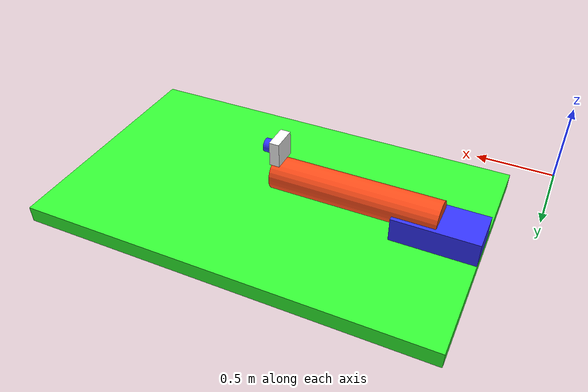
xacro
<?xml version='1.0' encoding='UTF-8'?>
<robot xmlns:xacro="https://www.ros.org/wiki/xacro" name="demo_robot">

    <!-- Including file with inertial and color tags -->
    <xacro:include filename="example_include.xacro"/>

    <!--Want the base link fixed-->
    <link name='world'/>

    <joint name="base_joint" type="fixed">
        <origin xyz="1.5 1.0 0.0" rpy="0 0 0"/>
        <parent link='world'/>
        <child link="base_link"/>
    </joint>

    <!--Rectangular plate-->
    <link name="base_link">
        <visual>
            <geometry>
                <box size="2.5 1.5 0.1" />
            </geometry>
            <origin xyz="0 0 0.05" />
            <material name="green" />
        </visual>
        <collision>
            <geometry>
                <box size="2.5 1.5 0.1" />
            </geometry>
            <origin xyz="0 0 0.05" rpy="0 0 0" />
        </collision>
        <inertial>
            <origin xyz="0 0 0.05" rpy="0 0 0"/>
            <mass value="12"/>
            <inertia ixx="2.26" ixy="0.0" ixz="6.26" iyy="0.0" iyz="0" izz="8.5"/>
        </inertial>
    </link>

    <joint name="slider_joint" type="prismatic">
        <origin xyz="-1.25 0 0.1" rpy="0 0 0" />
        <parent link="base_link" />
        <child link = "slider_link" />
        <axis xyz="1 0 0" />
        <limit lower="0" upper = "2" velocity="100" effort="100" />
    </joint>

    <link name="slider_link">
        <visual>
            <geometry>
                <box size="0.5 0.25 0.15" />
            </geometry>
            <origin xyz="0.25 0 0.075" />
            <material name="blue" />
        </visual>
        <collision>
            <geometry>
                <box size="0.5 0.25 0.15" />
            </geometry>
            <origin xyz="0.25 0 0.075" />
        </collision>
        <xacro:inertial_box mass="0.5" x="0.5" y="0.25" z="0.15">
            <origin xyz="0 0 0.075" rpy="0 0 0" />
        </xacro:inertial_box>
    </link>

    <joint name="arm_joint" type="revolute">
        <origin xyz="0.25 0 0.15" rpy="0 0 0"/>
        <parent link="slider_link"/>
        <child link="arm_link"/>
        <axis xyz="0 -1 0"/>
        <limit lower="0" upper="${pi/2}" effort="100" velocity="100"/>
    </joint>

    <xacro:property name="arm_length" value="1"/>
    <xacro:property name="arm_radius" value="0.1"/>

    <link name="arm_link">
        <visual>
            <geometry>
                <cylinder length="${arm_length}" radius="${arm_radius}"/>
            </geometry>
            <origin xyz="${arm_length/2} 0 0" rpy="0 ${pi/2} 0"/>
            <material name="orange"/>
        </visual>
        <collision>
            <geometry>
                <cylinder radius="${arm_radius}" length="${arm_length}"/>
            </geometry>
            <origin xyz="${arm_length/2}" rpy="0 ${pi/2} 0"/>
        </collision>
        <xacro:inertial_cylinder mass="1.0" length="${arm_length}" radius="${arm_radius}">
            <origin xyz="${arm_length/2} 0 0" rpy="0 ${pi/2} 0"/>
        </xacro:inertial_cylinder>
    </link>

    <joint name="camera_joint" type="fixed">
        <origin xyz="${arm_length} 0 ${arm_radius + 0.075}" rpy="0 0 0"/>
        <parent link="arm_link"/>
        <child link="camera_link"/>
    </joint>

    <link name="camera_link">
        <!-- Camer Box -->
        <visual>
            <geometry>
                <box size="0.06 0.15 0.15"/>
            </geometry>
            <origin xyz="-0.03 0 0" rpy="0 0 0"/>
            <material name="white"/>
        </visual>

        <!-- Camera Lens -->
        <visual>
            <geometry>
                <cylinder radius="0.04" length="0.06"/>
            </geometry>
            <origin xyz="0.03 0 0" rpy="0 ${pi/2} 0"/>
            <material name="blue"/>
        </visual>
        <collision>
            <geometry>
                <box size="0.12 0.15 0.15"/>
            </geometry>
            <origin xyz="0 0 0" rpy="0 0 0"/>
        </collision>
        <xacro:inertial_box mass="0.1" x="0.12" y="0.15" z="0.15">
            <origin xyz="0 0 0" rpy="0 0 0"/>
        </xacro:inertial_box>
    </link>

</robot>

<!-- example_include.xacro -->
<robot xmlns:xacro="http://www.ros.org/wiki/xacro">

    <!-- This file includes useful tags which we can use to define some of the objects in the urdf file like a cpp config file-->

    <!-- Specifying some colors -->
    <material name="white">
        <color rgba="1 1 1 1"/>
    </material>

    <material name="orange">
        <color rgba="1 0.3 0.1 1"/>
    </material>

    <material name="blue">
        <color rgba="0.2 0.2 1 1"/>
    </material>

    <material name="green">
        <color rgba="0.2 1 0.2 1"/>
    </material>

    <!-- Specify some standard inertial calculations https://en.wikipedia.org/wiki/List_of_moments_of_inertia -->
    <!-- These make use of xacro's mathematical functionality -->

    <xacro:macro name="inertial_sphere" params="mass radius *origin">
        <inertial>
            <xacro:insert_block name="origin"/>
            <mass value="${mass}"/>
            <inertia ixx="${(2/5) * mass * (radius*radius)}" ixy="0.0" ixz="0.0"
                     iyy="${(2/5) * mass * (radius*radius)}" iyz="0.0"
                     izz="${(2/5) * mass * (radius*radius)}"/>
        </inertial>
    </xacro:macro>

    <xacro:macro name="inertial_box" params="mass x y z *origin">
        <inertial>
            <xacro:insert_block name="origin"/>
            <mass value="${mass}"/>
            <inertia ixx="${(1/12) * mass * ((y*y)*(z*z))}" ixy="0.0" ixz="0.0"
                     iyy="${(1/12) * mass * ((x*x)*(z*z))}" iyz="0.0"
                     izz="${(1/12) * mass * ((x*x)*(y*y))}"/>
        </inertial>
    </xacro:macro>

    <xacro:macro name="inertial_cylinder" params="mass length radius *origin">
        <inertial>
            <xacro:insert_block name="origin"/>
            <mass value="${mass}"/>
            <inertia ixx="${(1/12) * mass * ((3*radius*radius) + (length*length))}" ixy="0.0" ixz="0.0"
                     iyy="${(1/12) * mass * ((3*radius*radius) + (length*length))}" iyz="0"
                     izz="${(1/12) * mass * (radius*radius)}"/>
        </inertial>
    </xacro:macro>

</robot>
